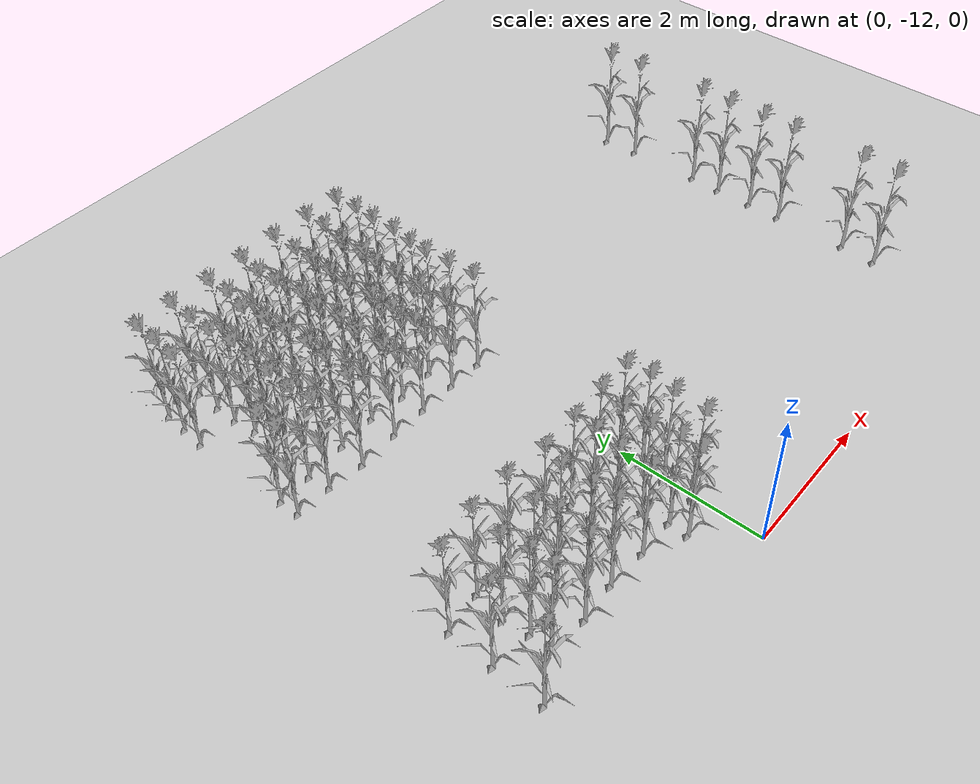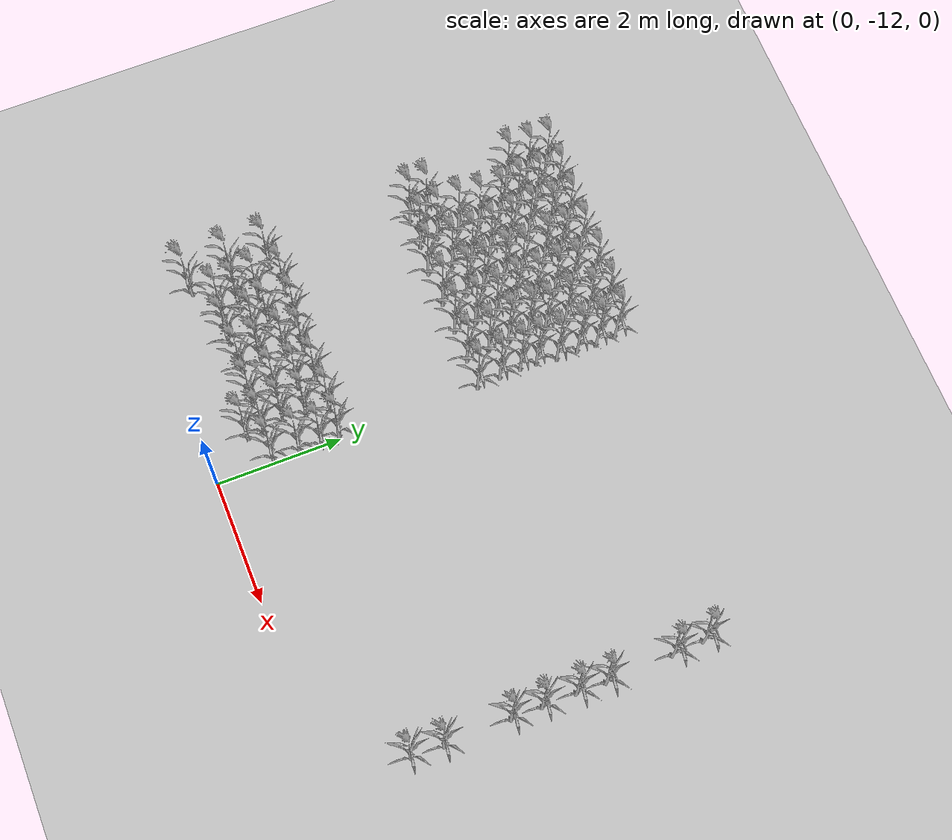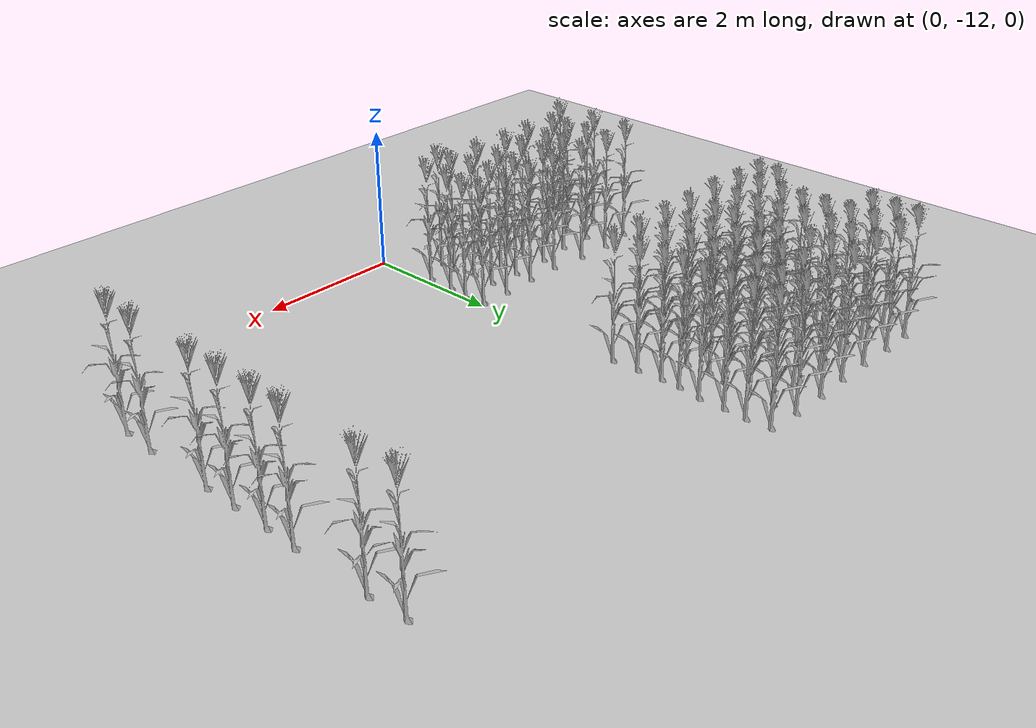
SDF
<sdf version="1.7">
 <world name="farmland_world">
  <model name="ground_plane">
   <static>1</static>
   <link name="link">
    <collision name="collision">
     <geometry><plane><normal>0 0 1</normal><size>40.0 40.0</size></plane></geometry>
     <surface><friction><ode><mu>100</mu><mu2>50</mu2></ode></friction></surface>
    </collision>
    <visual name="visual">
     <cast_shadows>0</cast_shadows>
     <geometry><plane><normal>0 0 1</normal><size>40.0 40.0</size></plane></geometry>
     <material>
      <script><uri>file://media/materials/scripts/gazebo.material</uri><name>Gazebo/Grey</name></script>
     </material>
    </visual>
   </link>
  </model>
  <model name="tree_3_907">
   <static>1</static>
   <link name="link">
    <collision name="collision">
     <geometry><mesh><uri>model://Corn_low_poly/corn.obj</uri><scale>1 1 1</scale></mesh></geometry>
     <surface><friction><ode><mu>100</mu><mu2>50</mu2></ode></friction></surface>
    </collision>
    <visual name="visual">
     <geometry><mesh><uri>model://Corn_low_poly/corn.obj</uri><scale>1 1 1</scale></mesh></geometry>
    </visual>
   </link>
   <pose>4.960904113792251 -6.073418864360485 0 0 0 0</pose>
  </model>
  <model name="tree_3_908">
   <static>1</static>
   <link name="link">
    <collision name="collision">
     <geometry><mesh><uri>model://Corn_low_poly/corn.obj</uri><scale>1 1 1</scale></mesh></geometry>
     <surface><friction><ode><mu>100</mu><mu2>50</mu2></ode></friction></surface>
    </collision>
    <visual name="visual">
     <geometry><mesh><uri>model://Corn_low_poly/corn.obj</uri><scale>1 1 1</scale></mesh></geometry>
    </visual>
   </link>
   <pose>4.989653443699581 -6.587160479671399 0 0 0 0</pose>
  </model>
  <model name="tree_3_910">
   <static>1</static>
   <link name="link">
    <collision name="collision">
     <geometry><mesh><uri>model://Corn_low_poly/corn.obj</uri><scale>1 1 1</scale></mesh></geometry>
     <surface><friction><ode><mu>100</mu><mu2>50</mu2></ode></friction></surface>
    </collision>
    <visual name="visual">
     <geometry><mesh><uri>model://Corn_low_poly/corn.obj</uri><scale>1 1 1</scale></mesh></geometry>
    </visual>
   </link>
   <pose>5.012452274802734 -7.663398571187663 0 0 0 0</pose>
  </model>
  <model name="tree_3_911">
   <static>1</static>
   <link name="link">
    <collision name="collision">
     <geometry><mesh><uri>model://Corn_low_poly/corn.obj</uri><scale>1 1 1</scale></mesh></geometry>
     <surface><friction><ode><mu>100</mu><mu2>50</mu2></ode></friction></surface>
    </collision>
    <visual name="visual">
     <geometry><mesh><uri>model://Corn_low_poly/corn.obj</uri><scale>1 1 1</scale></mesh></geometry>
    </visual>
   </link>
   <pose>5.003562795902089 -8.127571084656687 0 0 0 0</pose>
  </model>
  <model name="tree_3_912">
   <static>1</static>
   <link name="link">
    <collision name="collision">
     <geometry><mesh><uri>model://Corn_low_poly/corn.obj</uri><scale>1 1 1</scale></mesh></geometry>
     <surface><friction><ode><mu>100</mu><mu2>50</mu2></ode></friction></surface>
    </collision>
    <visual name="visual">
     <geometry><mesh><uri>model://Corn_low_poly/corn.obj</uri><scale>1 1 1</scale></mesh></geometry>
    </visual>
   </link>
   <pose>5.0082375647005914 -8.671102984846886 0 0 0 0</pose>
  </model>
  <model name="tree_3_913">
   <static>1</static>
   <link name="link">
    <collision name="collision">
     <geometry><mesh><uri>model://Corn_low_poly/corn.obj</uri><scale>1 1 1</scale></mesh></geometry>
     <surface><friction><ode><mu>100</mu><mu2>50</mu2></ode></friction></surface>
    </collision>
    <visual name="visual">
     <geometry><mesh><uri>model://Corn_low_poly/corn.obj</uri><scale>1 1 1</scale></mesh></geometry>
    </visual>
   </link>
   <pose>5.009978428316922 -9.162619255041209 0 0 0 0</pose>
  </model>
  <model name="tree_3_915">
   <static>1</static>
   <link name="link">
    <collision name="collision">
     <geometry><mesh><uri>model://Corn_low_poly/corn.obj</uri><scale>1 1 1</scale></mesh></geometry>
     <surface><friction><ode><mu>100</mu><mu2>50</mu2></ode></friction></surface>
    </collision>
    <visual name="visual">
     <geometry><mesh><uri>model://Corn_low_poly/corn.obj</uri><scale>1 1 1</scale></mesh></geometry>
    </visual>
   </link>
   <pose>5.022867575815033 -10.214676860148334 0 0 0 0</pose>
  </model>
  <model name="tree_3_916">
   <static>1</static>
   <link name="link">
    <collision name="collision">
     <geometry><mesh><uri>model://Corn_low_poly/corn.obj</uri><scale>1 1 1</scale></mesh></geometry>
     <surface><friction><ode><mu>100</mu><mu2>50</mu2></ode></friction></surface>
    </collision>
    <visual name="visual">
     <geometry><mesh><uri>model://Corn_low_poly/corn.obj</uri><scale>1 1 1</scale></mesh></geometry>
    </visual>
   </link>
   <pose>4.996989608821176 -10.727343626677879 0 0 0 0</pose>
  </model>
  <model name="tree_3_2013">
   <static>1</static>
   <link name="link">
    <collision name="collision">
     <geometry><mesh><uri>model://Corn_low_poly/corn.obj</uri><scale>1 1 1</scale></mesh></geometry>
     <surface><friction><ode><mu>100</mu><mu2>50</mu2></ode></friction></surface>
    </collision>
    <visual name="visual">
     <geometry><mesh><uri>model://Corn_low_poly/corn.obj</uri><scale>1 1 1</scale></mesh></geometry>
    </visual>
   </link>
   <pose>-0.04642548947800543 -11.048270782236017 0 0 0 0</pose>
  </model>
  <model name="tree_3_2014">
   <static>1</static>
   <link name="link">
    <collision name="collision">
     <geometry><mesh><uri>model://Corn_low_poly/corn.obj</uri><scale>1 1 1</scale></mesh></geometry>
     <surface><friction><ode><mu>100</mu><mu2>50</mu2></ode></friction></surface>
    </collision>
    <visual name="visual">
     <geometry><mesh><uri>model://Corn_low_poly/corn.obj</uri><scale>1 1 1</scale></mesh></geometry>
    </visual>
   </link>
   <pose>-0.492072833979026 -11.031853719489208 0 0 0 0</pose>
  </model>
  <model name="tree_3_2015">
   <static>1</static>
   <link name="link">
    <collision name="collision">
     <geometry><mesh><uri>model://Corn_low_poly/corn.obj</uri><scale>1 1 1</scale></mesh></geometry>
     <surface><friction><ode><mu>100</mu><mu2>50</mu2></ode></friction></surface>
    </collision>
    <visual name="visual">
     <geometry><mesh><uri>model://Corn_low_poly/corn.obj</uri><scale>1 1 1</scale></mesh></geometry>
    </visual>
   </link>
   <pose>-1.016081686885649 -11.036350345827861 0 0 0 0</pose>
  </model>
  <model name="tree_3_2016">
   <static>1</static>
   <link name="link">
    <collision name="collision">
     <geometry><mesh><uri>model://Corn_low_poly/corn.obj</uri><scale>1 1 1</scale></mesh></geometry>
     <surface><friction><ode><mu>100</mu><mu2>50</mu2></ode></friction></surface>
    </collision>
    <visual name="visual">
     <geometry><mesh><uri>model://Corn_low_poly/corn.obj</uri><scale>1 1 1</scale></mesh></geometry>
    </visual>
   </link>
   <pose>-1.5691146932293378 -11.009192581070746 0 0 0 0</pose>
  </model>
  <model name="tree_3_2017">
   <static>1</static>
   <link name="link">
    <collision name="collision">
     <geometry><mesh><uri>model://Corn_low_poly/corn.obj</uri><scale>1 1 1</scale></mesh></geometry>
     <surface><friction><ode><mu>100</mu><mu2>50</mu2></ode></friction></surface>
    </collision>
    <visual name="visual">
     <geometry><mesh><uri>model://Corn_low_poly/corn.obj</uri><scale>1 1 1</scale></mesh></geometry>
    </visual>
   </link>
   <pose>-2.0837248313382823 -11.049086042693116 0 0 0 0</pose>
  </model>
  <model name="tree_3_2018">
   <static>1</static>
   <link name="link">
    <collision name="collision">
     <geometry><mesh><uri>model://Corn_low_poly/corn.obj</uri><scale>1 1 1</scale></mesh></geometry>
     <surface><friction><ode><mu>100</mu><mu2>50</mu2></ode></friction></surface>
    </collision>
    <visual name="visual">
     <geometry><mesh><uri>model://Corn_low_poly/corn.obj</uri><scale>1 1 1</scale></mesh></geometry>
    </visual>
   </link>
   <pose>-2.5737917995754698 -10.987284565926311 0 0 0 0</pose>
  </model>
  <model name="tree_3_2048">
   <static>1</static>
   <link name="link">
    <collision name="collision">
     <geometry><mesh><uri>model://Corn_low_poly/corn.obj</uri><scale>1 1 1</scale></mesh></geometry>
     <surface><friction><ode><mu>100</mu><mu2>50</mu2></ode></friction></surface>
    </collision>
    <visual name="visual">
     <geometry><mesh><uri>model://Corn_low_poly/corn.obj</uri><scale>1 1 1</scale></mesh></geometry>
    </visual>
   </link>
   <pose>-0.4959463640014836 -11.294237832303077 0 0 0 0</pose>
  </model>
  <model name="tree_3_2053">
   <static>1</static>
   <link name="link">
    <collision name="collision">
     <geometry><mesh><uri>model://Corn_low_poly/corn.obj</uri><scale>1 1 1</scale></mesh></geometry>
     <surface><friction><ode><mu>100</mu><mu2>50</mu2></ode></friction></surface>
    </collision>
    <visual name="visual">
     <geometry><mesh><uri>model://Corn_low_poly/corn.obj</uri><scale>1 1 1</scale></mesh></geometry>
    </visual>
   </link>
   <pose>-3.106234592842121 -11.323358223443078 0 0 0 0</pose>
  </model>
  <model name="tree_3_2115">
   <static>1</static>
   <link name="link">
    <collision name="collision">
     <geometry><mesh><uri>model://Corn_low_poly/corn.obj</uri><scale>1 1 1</scale></mesh></geometry>
     <surface><friction><ode><mu>100</mu><mu2>50</mu2></ode></friction></surface>
    </collision>
    <visual name="visual">
     <geometry><mesh><uri>model://Corn_low_poly/corn.obj</uri><scale>1 1 1</scale></mesh></geometry>
    </visual>
   </link>
   <pose>-0.02213013065476145 -9.985273160149006 0 0 0 0</pose>
  </model>
  <model name="tree_3_2116">
   <static>1</static>
   <link name="link">
    <collision name="collision">
     <geometry><mesh><uri>model://Corn_low_poly/corn.obj</uri><scale>1 1 1</scale></mesh></geometry>
     <surface><friction><ode><mu>100</mu><mu2>50</mu2></ode></friction></surface>
    </collision>
    <visual name="visual">
     <geometry><mesh><uri>model://Corn_low_poly/corn.obj</uri><scale>1 1 1</scale></mesh></geometry>
    </visual>
   </link>
   <pose>-0.46561172927156197 -9.977976396988401 0 0 0 0</pose>
  </model>
  <model name="tree_3_2117">
   <static>1</static>
   <link name="link">
    <collision name="collision">
     <geometry><mesh><uri>model://Corn_low_poly/corn.obj</uri><scale>1 1 1</scale></mesh></geometry>
     <surface><friction><ode><mu>100</mu><mu2>50</mu2></ode></friction></surface>
    </collision>
    <visual name="visual">
     <geometry><mesh><uri>model://Corn_low_poly/corn.obj</uri><scale>1 1 1</scale></mesh></geometry>
    </visual>
   </link>
   <pose>-0.9843082422897207 -10.005547580233921 0 0 0 0</pose>
  </model>
  <model name="tree_3_2118">
   <static>1</static>
   <link name="link">
    <collision name="collision">
     <geometry><mesh><uri>model://Corn_low_poly/corn.obj</uri><scale>1 1 1</scale></mesh></geometry>
     <surface><friction><ode><mu>100</mu><mu2>50</mu2></ode></friction></surface>
    </collision>
    <visual name="visual">
     <geometry><mesh><uri>model://Corn_low_poly/corn.obj</uri><scale>1 1 1</scale></mesh></geometry>
    </visual>
   </link>
   <pose>-1.5002613882177902 -10.023325452817653 0 0 0 0</pose>
  </model>
  <model name="tree_3_2119">
   <static>1</static>
   <link name="link">
    <collision name="collision">
     <geometry><mesh><uri>model://Corn_low_poly/corn.obj</uri><scale>1 1 1</scale></mesh></geometry>
     <surface><friction><ode><mu>100</mu><mu2>50</mu2></ode></friction></surface>
    </collision>
    <visual name="visual">
     <geometry><mesh><uri>model://Corn_low_poly/corn.obj</uri><scale>1 1 1</scale></mesh></geometry>
    </visual>
   </link>
   <pose>-2.0321054897871758 -9.954904939214469 0 0 0 0</pose>
  </model>
  <model name="tree_3_2120">
   <static>1</static>
   <link name="link">
    <collision name="collision">
     <geometry><mesh><uri>model://Corn_low_poly/corn.obj</uri><scale>1 1 1</scale></mesh></geometry>
     <surface><friction><ode><mu>100</mu><mu2>50</mu2></ode></friction></surface>
    </collision>
    <visual name="visual">
     <geometry><mesh><uri>model://Corn_low_poly/corn.obj</uri><scale>1 1 1</scale></mesh></geometry>
    </visual>
   </link>
   <pose>-2.563560202405726 -9.95061014771989 0 0 0 0</pose>
  </model>
  <model name="tree_3_2121">
   <static>1</static>
   <link name="link">
    <collision name="collision">
     <geometry><mesh><uri>model://Corn_low_poly/corn.obj</uri><scale>1 1 1</scale></mesh></geometry>
     <surface><friction><ode><mu>100</mu><mu2>50</mu2></ode></friction></surface>
    </collision>
    <visual name="visual">
     <geometry><mesh><uri>model://Corn_low_poly/corn.obj</uri><scale>1 1 1</scale></mesh></geometry>
    </visual>
   </link>
   <pose>-3.0910837123541977 -10.027543637391805 0 0 0 0</pose>
  </model>
  <model name="tree_3_2149">
   <static>1</static>
   <link name="link">
    <collision name="collision">
     <geometry><mesh><uri>model://Corn_low_poly/corn.obj</uri><scale>1 1 1</scale></mesh></geometry>
     <surface><friction><ode><mu>100</mu><mu2>50</mu2></ode></friction></surface>
    </collision>
    <visual name="visual">
     <geometry><mesh><uri>model://Corn_low_poly/corn.obj</uri><scale>1 1 1</scale></mesh></geometry>
    </visual>
   </link>
   <pose>0.028607755979425654 -10.283043746969993 0 0 0 0</pose>
  </model>
  <model name="tree_3_2150">
   <static>1</static>
   <link name="link">
    <collision name="collision">
     <geometry><mesh><uri>model://Corn_low_poly/corn.obj</uri><scale>1 1 1</scale></mesh></geometry>
     <surface><friction><ode><mu>100</mu><mu2>50</mu2></ode></friction></surface>
    </collision>
    <visual name="visual">
     <geometry><mesh><uri>model://Corn_low_poly/corn.obj</uri><scale>1 1 1</scale></mesh></geometry>
    </visual>
   </link>
   <pose>-0.5400134436055499 -10.334297486931542 0 0 0 0</pose>
  </model>
  <model name="tree_3_2151">
   <static>1</static>
   <link name="link">
    <collision name="collision">
     <geometry><mesh><uri>model://Corn_low_poly/corn.obj</uri><scale>1 1 1</scale></mesh></geometry>
     <surface><friction><ode><mu>100</mu><mu2>50</mu2></ode></friction></surface>
    </collision>
    <visual name="visual">
     <geometry><mesh><uri>model://Corn_low_poly/corn.obj</uri><scale>1 1 1</scale></mesh></geometry>
    </visual>
   </link>
   <pose>-0.9919652682633593 -10.297486940785271 0 0 0 0</pose>
  </model>
  <model name="tree_3_2152">
   <static>1</static>
   <link name="link">
    <collision name="collision">
     <geometry><mesh><uri>model://Corn_low_poly/corn.obj</uri><scale>1 1 1</scale></mesh></geometry>
     <surface><friction><ode><mu>100</mu><mu2>50</mu2></ode></friction></surface>
    </collision>
    <visual name="visual">
     <geometry><mesh><uri>model://Corn_low_poly/corn.obj</uri><scale>1 1 1</scale></mesh></geometry>
    </visual>
   </link>
   <pose>-1.5795753726536719 -10.299248081117073 0 0 0 0</pose>
  </model>
  <model name="tree_3_2153">
   <static>1</static>
   <link name="link">
    <collision name="collision">
     <geometry><mesh><uri>model://Corn_low_poly/corn.obj</uri><scale>1 1 1</scale></mesh></geometry>
     <surface><friction><ode><mu>100</mu><mu2>50</mu2></ode></friction></surface>
    </collision>
    <visual name="visual">
     <geometry><mesh><uri>model://Corn_low_poly/corn.obj</uri><scale>1 1 1</scale></mesh></geometry>
    </visual>
   </link>
   <pose>-2.1074814202514283 -10.374710971038109 0 0 0 0</pose>
  </model>
  <model name="tree_3_2154">
   <static>1</static>
   <link name="link">
    <collision name="collision">
     <geometry><mesh><uri>model://Corn_low_poly/corn.obj</uri><scale>1 1 1</scale></mesh></geometry>
     <surface><friction><ode><mu>100</mu><mu2>50</mu2></ode></friction></surface>
    </collision>
    <visual name="visual">
     <geometry><mesh><uri>model://Corn_low_poly/corn.obj</uri><scale>1 1 1</scale></mesh></geometry>
    </visual>
   </link>
   <pose>-2.6247111082918075 -10.369392395163235 0 0 0 0</pose>
  </model>
  <model name="tree_3_2183">
   <static>1</static>
   <link name="link">
    <collision name="collision">
     <geometry><mesh><uri>model://Corn_low_poly/corn.obj</uri><scale>1 1 1</scale></mesh></geometry>
     <surface><friction><ode><mu>100</mu><mu2>50</mu2></ode></friction></surface>
    </collision>
    <visual name="visual">
     <geometry><mesh><uri>model://Corn_low_poly/corn.obj</uri><scale>1 1 1</scale></mesh></geometry>
    </visual>
   </link>
   <pose>-0.02584936781220494 -10.626668128865997 0 0 0 0</pose>
  </model>
  <model name="tree_3_2184">
   <static>1</static>
   <link name="link">
    <collision name="collision">
     <geometry><mesh><uri>model://Corn_low_poly/corn.obj</uri><scale>1 1 1</scale></mesh></geometry>
     <surface><friction><ode><mu>100</mu><mu2>50</mu2></ode></friction></surface>
    </collision>
    <visual name="visual">
     <geometry><mesh><uri>model://Corn_low_poly/corn.obj</uri><scale>1 1 1</scale></mesh></geometry>
    </visual>
   </link>
   <pose>-0.5579998149183683 -10.700849301045078 0 0 0 0</pose>
  </model>
  <model name="tree_3_2185">
   <static>1</static>
   <link name="link">
    <collision name="collision">
     <geometry><mesh><uri>model://Corn_low_poly/corn.obj</uri><scale>1 1 1</scale></mesh></geometry>
     <surface><friction><ode><mu>100</mu><mu2>50</mu2></ode></friction></surface>
    </collision>
    <visual name="visual">
     <geometry><mesh><uri>model://Corn_low_poly/corn.obj</uri><scale>1 1 1</scale></mesh></geometry>
    </visual>
   </link>
   <pose>-1.034063844153392 -10.639533207839534 0 0 0 0</pose>
  </model>
  <model name="tree_3_2186">
   <static>1</static>
   <link name="link">
    <collision name="collision">
     <geometry><mesh><uri>model://Corn_low_poly/corn.obj</uri><scale>1 1 1</scale></mesh></geometry>
     <surface><friction><ode><mu>100</mu><mu2>50</mu2></ode></friction></surface>
    </collision>
    <visual name="visual">
     <geometry><mesh><uri>model://Corn_low_poly/corn.obj</uri><scale>1 1 1</scale></mesh></geometry>
    </visual>
   </link>
   <pose>-1.5764268529042722 -10.693873108025064 0 0 0 0</pose>
  </model>
  <model name="tree_3_2187">
   <static>1</static>
   <link name="link">
    <collision name="collision">
     <geometry><mesh><uri>model://Corn_low_poly/corn.obj</uri><scale>1 1 1</scale></mesh></geometry>
     <surface><friction><ode><mu>100</mu><mu2>50</mu2></ode></friction></surface>
    </collision>
    <visual name="visual">
     <geometry><mesh><uri>model://Corn_low_poly/corn.obj</uri><scale>1 1 1</scale></mesh></geometry>
    </visual>
   </link>
   <pose>-2.0350485640799967 -10.620006559471838 0 0 0 0</pose>
  </model>
  <model name="tree_3_2188">
   <static>1</static>
   <link name="link">
    <collision name="collision">
     <geometry><mesh><uri>model://Corn_low_poly/corn.obj</uri><scale>1 1 1</scale></mesh></geometry>
     <surface><friction><ode><mu>100</mu><mu2>50</mu2></ode></friction></surface>
    </collision>
    <visual name="visual">
     <geometry><mesh><uri>model://Corn_low_poly/corn.obj</uri><scale>1 1 1</scale></mesh></geometry>
    </visual>
   </link>
   <pose>-2.575145703894628 -10.704033431645128 0 0 0 0</pose>
  </model>
  <model name="tree_3_2189">
   <static>1</static>
   <link name="link">
    <collision name="collision">
     <geometry><mesh><uri>model://Corn_low_poly/corn.obj</uri><scale>1 1 1</scale></mesh></geometry>
     <surface><friction><ode><mu>100</mu><mu2>50</mu2></ode></friction></surface>
    </collision>
    <visual name="visual">
     <geometry><mesh><uri>model://Corn_low_poly/corn.obj</uri><scale>1 1 1</scale></mesh></geometry>
    </visual>
   </link>
   <pose>-3.105563782836315 -10.642253614043241 0 0 0 0</pose>
  </model>
  <model name="tree_3_2217">
   <static>1</static>
   <link name="link">
    <collision name="collision">
     <geometry><mesh><uri>model://Corn_low_poly/corn.obj</uri><scale>1 1 1</scale></mesh></geometry>
     <surface><friction><ode><mu>100</mu><mu2>50</mu2></ode></friction></surface>
    </collision>
    <visual name="visual">
     <geometry><mesh><uri>model://Corn_low_poly/corn.obj</uri><scale>1 1 1</scale></mesh></geometry>
    </visual>
   </link>
   <pose>-0.041312812604115456 -6.96557911284126 0 0 0 0</pose>
  </model>
  <model name="tree_3_2218">
   <static>1</static>
   <link name="link">
    <collision name="collision">
     <geometry><mesh><uri>model://Corn_low_poly/corn.obj</uri><scale>1 1 1</scale></mesh></geometry>
     <surface><friction><ode><mu>100</mu><mu2>50</mu2></ode></friction></surface>
    </collision>
    <visual name="visual">
     <geometry><mesh><uri>model://Corn_low_poly/corn.obj</uri><scale>1 1 1</scale></mesh></geometry>
    </visual>
   </link>
   <pose>-0.5537437878373408 -6.961146016565416 0 0 0 0</pose>
  </model>
  <model name="tree_3_2219">
   <static>1</static>
   <link name="link">
    <collision name="collision">
     <geometry><mesh><uri>model://Corn_low_poly/corn.obj</uri><scale>1 1 1</scale></mesh></geometry>
     <surface><friction><ode><mu>100</mu><mu2>50</mu2></ode></friction></surface>
    </collision>
    <visual name="visual">
     <geometry><mesh><uri>model://Corn_low_poly/corn.obj</uri><scale>1 1 1</scale></mesh></geometry>
    </visual>
   </link>
   <pose>-0.9998146805334125 -6.995253846596939 0 0 0 0</pose>
  </model>
  <model name="tree_3_2220">
   <static>1</static>
   <link name="link">
    <collision name="collision">
     <geometry><mesh><uri>model://Corn_low_poly/corn.obj</uri><scale>1 1 1</scale></mesh></geometry>
     <surface><friction><ode><mu>100</mu><mu2>50</mu2></ode></friction></surface>
    </collision>
    <visual name="visual">
     <geometry><mesh><uri>model://Corn_low_poly/corn.obj</uri><scale>1 1 1</scale></mesh></geometry>
    </visual>
   </link>
   <pose>-1.5051397639376813 -7.005071352751799 0 0 0 0</pose>
  </model>
  <model name="tree_3_2221">
   <static>1</static>
   <link name="link">
    <collision name="collision">
     <geometry><mesh><uri>model://Corn_low_poly/corn.obj</uri><scale>1 1 1</scale></mesh></geometry>
     <surface><friction><ode><mu>100</mu><mu2>50</mu2></ode></friction></surface>
    </collision>
    <visual name="visual">
     <geometry><mesh><uri>model://Corn_low_poly/corn.obj</uri><scale>1 1 1</scale></mesh></geometry>
    </visual>
   </link>
   <pose>-2.0149944060234946 -7.002536056126972 0 0 0 0</pose>
  </model>
  <model name="tree_3_2222">
   <static>1</static>
   <link name="link">
    <collision name="collision">
     <geometry><mesh><uri>model://Corn_low_poly/corn.obj</uri><scale>1 1 1</scale></mesh></geometry>
     <surface><friction><ode><mu>100</mu><mu2>50</mu2></ode></friction></surface>
    </collision>
    <visual name="visual">
     <geometry><mesh><uri>model://Corn_low_poly/corn.obj</uri><scale>1 1 1</scale></mesh></geometry>
    </visual>
   </link>
   <pose>-2.59179874920372 -6.999561033527121 0 0 0 0</pose>
  </model>
  <model name="tree_3_2251">
   <static>1</static>
   <link name="link">
    <collision name="collision">
     <geometry><mesh><uri>model://Corn_low_poly/corn.obj</uri><scale>1 1 1</scale></mesh></geometry>
     <surface><friction><ode><mu>100</mu><mu2>50</mu2></ode></friction></surface>
    </collision>
    <visual name="visual">
     <geometry><mesh><uri>model://Corn_low_poly/corn.obj</uri><scale>1 1 1</scale></mesh></geometry>
    </visual>
   </link>
   <pose>-0.017557754621787613 -7.3184778557962 0 0 0 0</pose>
  </model>
  <model name="tree_3_2252">
   <static>1</static>
   <link name="link">
    <collision name="collision">
     <geometry><mesh><uri>model://Corn_low_poly/corn.obj</uri><scale>1 1 1</scale></mesh></geometry>
     <surface><friction><ode><mu>100</mu><mu2>50</mu2></ode></friction></surface>
    </collision>
    <visual name="visual">
     <geometry><mesh><uri>model://Corn_low_poly/corn.obj</uri><scale>1 1 1</scale></mesh></geometry>
    </visual>
   </link>
   <pose>-0.5032398136961135 -7.313154887261437 0 0 0 0</pose>
  </model>
  <model name="tree_3_2253">
   <static>1</static>
   <link name="link">
    <collision name="collision">
     <geometry><mesh><uri>model://Corn_low_poly/corn.obj</uri><scale>1 1 1</scale></mesh></geometry>
     <surface><friction><ode><mu>100</mu><mu2>50</mu2></ode></friction></surface>
    </collision>
    <visual name="visual">
     <geometry><mesh><uri>model://Corn_low_poly/corn.obj</uri><scale>1 1 1</scale></mesh></geometry>
    </visual>
   </link>
   <pose>-1.0061058751267986 -7.334967563342234 0 0 0 0</pose>
  </model>
  <model name="tree_3_2254">
   <static>1</static>
   <link name="link">
    <collision name="collision">
     <geometry><mesh><uri>model://Corn_low_poly/corn.obj</uri><scale>1 1 1</scale></mesh></geometry>
     <surface><friction><ode><mu>100</mu><mu2>50</mu2></ode></friction></surface>
    </collision>
    <visual name="visual">
     <geometry><mesh><uri>model://Corn_low_poly/corn.obj</uri><scale>1 1 1</scale></mesh></geometry>
    </visual>
   </link>
   <pose>-1.5092469742161643 -7.289737058345162 0 0 0 0</pose>
  </model>
  <model name="tree_3_2255">
   <static>1</static>
   <link name="link">
    <collision name="collision">
     <geometry><mesh><uri>model://Corn_low_poly/corn.obj</uri><scale>1 1 1</scale></mesh></geometry>
     <surface><friction><ode><mu>100</mu><mu2>50</mu2></ode></friction></surface>
    </collision>
    <visual name="visual">
     <geometry><mesh><uri>model://Corn_low_poly/corn.obj</uri><scale>1 1 1</scale></mesh></geometry>
    </visual>
   </link>
   <pose>-2.0400162198902962 -7.325091643299541 0 0 0 0</pose>
  </model>
  <model name="tree_3_2256">
   <static>1</static>
   <link name="link">
    <collision name="collision">
     <geometry><mesh><uri>model://Corn_low_poly/corn.obj</uri><scale>1 1 1</scale></mesh></geometry>
     <surface><friction><ode><mu>100</mu><mu2>50</mu2></ode></friction></surface>
    </collision>
    <visual name="visual">
     <geometry><mesh><uri>model://Corn_low_poly/corn.obj</uri><scale>1 1 1</scale></mesh></geometry>
    </visual>
   </link>
   <pose>-2.6056760471305744 -7.357366267214907 0 0 0 0</pose>
  </model>
  <model name="tree_3_2257">
   <static>1</static>
   <link name="link">
    <collision name="collision">
     <geometry><mesh><uri>model://Corn_low_poly/corn.obj</uri><scale>1 1 1</scale></mesh></geometry>
     <surface><friction><ode><mu>100</mu><mu2>50</mu2></ode></friction></surface>
    </collision>
    <visual name="visual">
     <geometry><mesh><uri>model://Corn_low_poly/corn.obj</uri><scale>1 1 1</scale></mesh></geometry>
    </visual>
   </link>
   <pose>-3.0541408734515585 -7.367090152414822 0 0 0 0</pose>
  </model>
  <model name="tree_3_2285">
   <static>1</static>
   <link name="link">
    <collision name="collision">
     <geometry><mesh><uri>model://Corn_low_poly/corn.obj</uri><scale>1 1 1</scale></mesh></geometry>
     <surface><friction><ode><mu>100</mu><mu2>50</mu2></ode></friction></surface>
    </collision>
    <visual name="visual">
     <geometry><mesh><uri>model://Corn_low_poly/corn.obj</uri><scale>1 1 1</scale></mesh></geometry>
    </visual>
   </link>
   <pose>0.006290333821949878 -7.695850848429042 0 0 0 0</pose>
  </model>
  <model name="tree_3_2286">
   <static>1</static>
   <link name="link">
    <collision name="collision">
     <geometry><mesh><uri>model://Corn_low_poly/corn.obj</uri><scale>1 1 1</scale></mesh></geometry>
     <surface><friction><ode><mu>100</mu><mu2>50</mu2></ode></friction></surface>
    </collision>
    <visual name="visual">
     <geometry><mesh><uri>model://Corn_low_poly/corn.obj</uri><scale>1 1 1</scale></mesh></geometry>
    </visual>
   </link>
   <pose>-0.4769852329360777 -7.686203987910508 0 0 0 0</pose>
  </model>
  <model name="tree_3_2287">
   <static>1</static>
   <link name="link">
    <collision name="collision">
     <geometry><mesh><uri>model://Corn_low_poly/corn.obj</uri><scale>1 1 1</scale></mesh></geometry>
     <surface><friction><ode><mu>100</mu><mu2>50</mu2></ode></friction></surface>
    </collision>
    <visual name="visual">
     <geometry><mesh><uri>model://Corn_low_poly/corn.obj</uri><scale>1 1 1</scale></mesh></geometry>
    </visual>
   </link>
   <pose>-1.0028683211827754 -7.685377840121842 0 0 0 0</pose>
  </model>
  <model name="tree_3_2288">
   <static>1</static>
   <link name="link">
    <collision name="collision">
     <geometry><mesh><uri>model://Corn_low_poly/corn.obj</uri><scale>1 1 1</scale></mesh></geometry>
     <surface><friction><ode><mu>100</mu><mu2>50</mu2></ode></friction></surface>
    </collision>
    <visual name="visual">
     <geometry><mesh><uri>model://Corn_low_poly/corn.obj</uri><scale>1 1 1</scale></mesh></geometry>
    </visual>
   </link>
   <pose>-1.5126735293606908 -7.68858449923938 0 0 0 0</pose>
  </model>
  <model name="tree_3_2289">
   <static>1</static>
   <link name="link">
    <collision name="collision">
     <geometry><mesh><uri>model://Corn_low_poly/corn.obj</uri><scale>1 1 1</scale></mesh></geometry>
     <surface><friction><ode><mu>100</mu><mu2>50</mu2></ode></friction></surface>
    </collision>
    <visual name="visual">
     <geometry><mesh><uri>model://Corn_low_poly/corn.obj</uri><scale>1 1 1</scale></mesh></geometry>
    </visual>
   </link>
   <pose>-2.0833358153659525 -7.715886626498872 0 0 0 0</pose>
  </model>
  <model name="tree_3_2290">
   <static>1</static>
   <link name="link">
    <collision name="collision">
     <geometry><mesh><uri>model://Corn_low_poly/corn.obj</uri><scale>1 1 1</scale></mesh></geometry>
     <surface><friction><ode><mu>100</mu><mu2>50</mu2></ode></friction></surface>
    </collision>
    <visual name="visual">
     <geometry><mesh><uri>model://Corn_low_poly/corn.obj</uri><scale>1 1 1</scale></mesh></geometry>
    </visual>
   </link>
   <pose>-2.568620818344639 -7.6607774912883455 0 0 0 0</pose>
  </model>
  <model name="tree_3_2291">
   <static>1</static>
   <link name="link">
    <collision name="collision">
     <geometry><mesh><uri>model://Corn_low_poly/corn.obj</uri><scale>1 1 1</scale></mesh></geometry>
     <surface><friction><ode><mu>100</mu><mu2>50</mu2></ode></friction></surface>
    </collision>
    <visual name="visual">
     <geometry><mesh><uri>model://Corn_low_poly/corn.obj</uri><scale>1 1 1</scale></mesh></geometry>
    </visual>
   </link>
   <pose>-3.0518321574026057 -7.651831577822282 0 0 0 0</pose>
  </model>
  <model name="tree_3_2319">
   <static>1</static>
   <link name="link">
    <collision name="collision">
     <geometry><mesh><uri>model://Corn_low_poly/corn.obj</uri><scale>1 1 1</scale></mesh></geometry>
     <surface><friction><ode><mu>100</mu><mu2>50</mu2></ode></friction></surface>
    </collision>
    <visual name="visual">
     <geometry><mesh><uri>model://Corn_low_poly/corn.obj</uri><scale>1 1 1</scale></mesh></geometry>
    </visual>
   </link>
   <pose>-0.00400335406446799 -6.016281173518571 0 0 0 0</pose>
  </model>
  <model name="tree_3_2320">
   <static>1</static>
   <link name="link">
    <collision name="collision">
     <geometry><mesh><uri>model://Corn_low_poly/corn.obj</uri><scale>1 1 1</scale></mesh></geometry>
     <surface><friction><ode><mu>100</mu><mu2>50</mu2></ode></friction></surface>
    </collision>
    <visual name="visual">
     <geometry><mesh><uri>model://Corn_low_poly/corn.obj</uri><scale>1 1 1</scale></mesh></geometry>
    </visual>
   </link>
   <pose>-0.5256089623915093 -6.0054518618994015 0 0 0 0</pose>
  </model>
  <model name="tree_3_2321">
   <static>1</static>
   <link name="link">
    <collision name="collision">
     <geometry><mesh><uri>model://Corn_low_poly/corn.obj</uri><scale>1 1 1</scale></mesh></geometry>
     <surface><friction><ode><mu>100</mu><mu2>50</mu2></ode></friction></surface>
    </collision>
    <visual name="visual">
     <geometry><mesh><uri>model://Corn_low_poly/corn.obj</uri><scale>1 1 1</scale></mesh></geometry>
    </visual>
   </link>
   <pose>-1.0198615284515224 -5.992027031478758 0 0 0 0</pose>
  </model>
  <model name="tree_3_2322">
   <static>1</static>
   <link name="link">
    <collision name="collision">
     <geometry><mesh><uri>model://Corn_low_poly/corn.obj</uri><scale>1 1 1</scale></mesh></geometry>
     <surface><friction><ode><mu>100</mu><mu2>50</mu2></ode></friction></surface>
    </collision>
    <visual name="visual">
     <geometry><mesh><uri>model://Corn_low_poly/corn.obj</uri><scale>1 1 1</scale></mesh></geometry>
    </visual>
   </link>
   <pose>-1.564990733893745 -5.952298318148459 0 0 0 0</pose>
  </model>
  <model name="tree_3_2323">
   <static>1</static>
   <link name="link">
    <collision name="collision">
     <geometry><mesh><uri>model://Corn_low_poly/corn.obj</uri><scale>1 1 1</scale></mesh></geometry>
     <surface><friction><ode><mu>100</mu><mu2>50</mu2></ode></friction></surface>
    </collision>
    <visual name="visual">
     <geometry><mesh><uri>model://Corn_low_poly/corn.obj</uri><scale>1 1 1</scale></mesh></geometry>
    </visual>
   </link>
   <pose>-2.103410271200279 -5.9882573811474895 0 0 0 0</pose>
  </model>
  <model name="tree_3_2324">
   <static>1</static>
   <link name="link">
    <collision name="collision">
     <geometry><mesh><uri>model://Corn_low_poly/corn.obj</uri><scale>1 1 1</scale></mesh></geometry>
     <surface><friction><ode><mu>100</mu><mu2>50</mu2></ode></friction></surface>
    </collision>
    <visual name="visual">
     <geometry><mesh><uri>model://Corn_low_poly/corn.obj</uri><scale>1 1 1</scale></mesh></geometry>
    </visual>
   </link>
   <pose>-2.581381017337994 -5.995414619195258 0 0 0 0</pose>
  </model>
  <model name="tree_3_2325">
   <static>1</static>
   <link name="link">
    <collision name="collision">
     <geometry><mesh><uri>model://Corn_low_poly/corn.obj</uri><scale>1 1 1</scale></mesh></geometry>
     <surface><friction><ode><mu>100</mu><mu2>50</mu2></ode></friction></surface>
    </collision>
    <visual name="visual">
     <geometry><mesh><uri>model://Corn_low_poly/corn.obj</uri><scale>1 1 1</scale></mesh></geometry>
    </visual>
   </link>
   <pose>-3.093212368988985 -5.971244478014256 0 0 0 0</pose>
  </model>
  <model name="tree_3_2353">
   <static>1</static>
   <link name="link">
    <collision name="collision">
     <geometry><mesh><uri>model://Corn_low_poly/corn.obj</uri><scale>1 1 1</scale></mesh></geometry>
     <surface><friction><ode><mu>100</mu><mu2>50</mu2></ode></friction></surface>
    </collision>
    <visual name="visual">
     <geometry><mesh><uri>model://Corn_low_poly/corn.obj</uri><scale>1 1 1</scale></mesh></geometry>
    </visual>
   </link>
   <pose>0.009254578577279028 -6.370016221462543 0 0 0 0</pose>
  </model>
  <model name="tree_3_2354">
   <static>1</static>
   <link name="link">
    <collision name="collision">
     <geometry><mesh><uri>model://Corn_low_poly/corn.obj</uri><scale>1 1 1</scale></mesh></geometry>
     <surface><friction><ode><mu>100</mu><mu2>50</mu2></ode></friction></surface>
    </collision>
    <visual name="visual">
     <geometry><mesh><uri>model://Corn_low_poly/corn.obj</uri><scale>1 1 1</scale></mesh></geometry>
    </visual>
   </link>
   <pose>-0.49381276603859864 -6.365714835795982 0 0 0 0</pose>
  </model>
  <model name="tree_3_2355">
   <static>1</static>
   <link name="link">
    <collision name="collision">
     <geometry><mesh><uri>model://Corn_low_poly/corn.obj</uri><scale>1 1 1</scale></mesh></geometry>
     <surface><friction><ode><mu>100</mu><mu2>50</mu2></ode></friction></surface>
    </collision>
    <visual name="visual">
     <geometry><mesh><uri>model://Corn_low_poly/corn.obj</uri><scale>1 1 1</scale></mesh></geometry>
    </visual>
   </link>
   <pose>-1.022464210042387 -6.324308777861228 0 0 0 0</pose>
  </model>
  <model name="tree_3_2356">
   <static>1</static>
   <link name="link">
    <collision name="collision">
     <geometry><mesh><uri>model://Corn_low_poly/corn.obj</uri><scale>1 1 1</scale></mesh></geometry>
     <surface><friction><ode><mu>100</mu><mu2>50</mu2></ode></friction></surface>
    </collision>
    <visual name="visual">
     <geometry><mesh><uri>model://Corn_low_poly/corn.obj</uri><scale>1 1 1</scale></mesh></geometry>
    </visual>
   </link>
   <pose>-1.5034592021619946 -6.359465150257799 0 0 0 0</pose>
  </model>
  <model name="tree_3_2357">
   <static>1</static>
   <link name="link">
    <collision name="collision">
     <geometry><mesh><uri>model://Corn_low_poly/corn.obj</uri><scale>1 1 1</scale></mesh></geometry>
     <surface><friction><ode><mu>100</mu><mu2>50</mu2></ode></friction></surface>
    </collision>
    <visual name="visual">
     <geometry><mesh><uri>model://Corn_low_poly/corn.obj</uri><scale>1 1 1</scale></mesh></geometry>
    </visual>
   </link>
   <pose>-2.06260027354299 -6.336630295092787 0 0 0 0</pose>
  </model>
  <model name="tree_3_2358">
   <static>1</static>
   <link name="link">
    <collision name="collision">
     <geometry><mesh><uri>model://Corn_low_poly/corn.obj</uri><scale>1 1 1</scale></mesh></geometry>
     <surface><friction><ode><mu>100</mu><mu2>50</mu2></ode></friction></surface>
    </collision>
    <visual name="visual">
     <geometry><mesh><uri>model://Corn_low_poly/corn.obj</uri><scale>1 1 1</scale></mesh></geometry>
    </visual>
   </link>
   <pose>-2.538372896129486 -6.321624784403664 0 0 0 0</pose>
  </model>
  <model name="tree_3_2387">
   <static>1</static>
   <link name="link">
    <collision name="collision">
     <geometry><mesh><uri>model://Corn_low_poly/corn.obj</uri><scale>1 1 1</scale></mesh></geometry>
     <surface><friction><ode><mu>100</mu><mu2>50</mu2></ode></friction></surface>
    </collision>
    <visual name="visual">
     <geometry><mesh><uri>model://Corn_low_poly/corn.obj</uri><scale>1 1 1</scale></mesh></geometry>
    </visual>
   </link>
   <pose>-0.03922675243228551 -6.696356303547448 0 0 0 0</pose>
  </model>
  <model name="tree_3_2388">
   <static>1</static>
   <link name="link">
    <collision name="collision">
     <geometry><mesh><uri>model://Corn_low_poly/corn.obj</uri><scale>1 1 1</scale></mesh></geometry>
     <surface><friction><ode><mu>100</mu><mu2>50</mu2></ode></friction></surface>
    </collision>
    <visual name="visual">
     <geometry><mesh><uri>model://Corn_low_poly/corn.obj</uri><scale>1 1 1</scale></mesh></geometry>
    </visual>
   </link>
   <pose>-0.5609988046686993 -6.620929818731742 0 0 0 0</pose>
  </model>
  <model name="tree_3_2389">
   <static>1</static>
   <link name="link">
    <collision name="collision">
     <geometry><mesh><uri>model://Corn_low_poly/corn.obj</uri><scale>1 1 1</scale></mesh></geometry>
     <surface><friction><ode><mu>100</mu><mu2>50</mu2></ode></friction></surface>
    </collision>
    <visual name="visual">
     <geometry><mesh><uri>model://Corn_low_poly/corn.obj</uri><scale>1 1 1</scale></mesh></geometry>
    </visual>
   </link>
   <pose>-1.0611618126782594 -6.657948292756172 0 0 0 0</pose>
  </model>
  <model name="tree_3_2390">
   <static>1</static>
   <link name="link">
    <collision name="collision">
     <geometry><mesh><uri>model://Corn_low_poly/corn.obj</uri><scale>1 1 1</scale></mesh></geometry>
     <surface><friction><ode><mu>100</mu><mu2>50</mu2></ode></friction></surface>
    </collision>
    <visual name="visual">
     <geometry><mesh><uri>model://Corn_low_poly/corn.obj</uri><scale>1 1 1</scale></mesh></geometry>
    </visual>
   </link>
   <pose>-1.5461282588049226 -6.640949976782104 0 0 0 0</pose>
  </model>
  <model name="tree_3_2391">
   <static>1</static>
   <link name="link">
    <collision name="collision">
     <geometry><mesh><uri>model://Corn_low_poly/corn.obj</uri><scale>1 1 1</scale></mesh></geometry>
     <surface><friction><ode><mu>100</mu><mu2>50</mu2></ode></friction></surface>
    </collision>
    <visual name="visual">
     <geometry><mesh><uri>model://Corn_low_poly/corn.obj</uri><scale>1 1 1</scale></mesh></geometry>
    </visual>
   </link>
   <pose>-2.0400708221955863 -6.6766774624899 0 0 0 0</pose>
  </model>
  <model name="tree_3_2392">
   <static>1</static>
   <link name="link">
    <collision name="collision">
     <geometry><mesh><uri>model://Corn_low_poly/corn.obj</uri><scale>1 1 1</scale></mesh></geometry>
     <surface><friction><ode><mu>100</mu><mu2>50</mu2></ode></friction></surface>
    </collision>
    <visual name="visual">
     <geometry><mesh><uri>model://Corn_low_poly/corn.obj</uri><scale>1 1 1</scale></mesh></geometry>
    </visual>
   </link>
   <pose>-2.5424007427371706 -6.667147759836097 0 0 0 0</pose>
  </model>
  <model name="tree_3_2455">
   <static>1</static>
   <link name="link">
    <collision name="collision">
     <geometry><mesh><uri>model://Corn_low_poly/corn.obj</uri><scale>1 1 1</scale></mesh></geometry>
     <surface><friction><ode><mu>100</mu><mu2>50</mu2></ode></friction></surface>
    </collision>
    <visual name="visual">
     <geometry><mesh><uri>model://Corn_low_poly/corn.obj</uri><scale>1 1 1</scale></mesh></geometry>
    </visual>
   </link>
   <pose>-0.013335294298962963 -5.375262615844438 0 0 0 0</pose>
  </model>
  <model name="tree_3_2456">
   <static>1</static>
   <link name="link">
    <collision name="collision">
     <geometry><mesh><uri>model://Corn_low_poly/corn.obj</uri><scale>1 1 1</scale></mesh></geometry>
     <surface><friction><ode><mu>100</mu><mu2>50</mu2></ode></friction></surface>
    </collision>
    <visual name="visual">
     <geometry><mesh><uri>model://Corn_low_poly/corn.obj</uri><scale>1 1 1</scale></mesh></geometry>
    </visual>
   </link>
   <pose>-0.4915070668143163 -5.339904030464263 0 0 0 0</pose>
  </model>
  <model name="tree_3_2457">
   <static>1</static>
   <link name="link">
    <collision name="collision">
     <geometry><mesh><uri>model://Corn_low_poly/corn.obj</uri><scale>1 1 1</scale></mesh></geometry>
     <surface><friction><ode><mu>100</mu><mu2>50</mu2></ode></friction></surface>
    </collision>
    <visual name="visual">
     <geometry><mesh><uri>model://Corn_low_poly/corn.obj</uri><scale>1 1 1</scale></mesh></geometry>
    </visual>
   </link>
   <pose>-1.0162076628075885 -5.327223112176933 0 0 0 0</pose>
  </model>
  <model name="tree_3_2458">
   <static>1</static>
   <link name="link">
    <collision name="collision">
     <geometry><mesh><uri>model://Corn_low_poly/corn.obj</uri><scale>1 1 1</scale></mesh></geometry>
     <surface><friction><ode><mu>100</mu><mu2>50</mu2></ode></friction></surface>
    </collision>
    <visual name="visual">
     <geometry><mesh><uri>model://Corn_low_poly/corn.obj</uri><scale>1 1 1</scale></mesh></geometry>
    </visual>
   </link>
   <pose>-1.532171263767923 -5.342925859120517 0 0 0 0</pose>
  </model>
  <model name="tree_3_2459">
   <static>1</static>
   <link name="link">
    <collision name="collision">
     <geometry><mesh><uri>model://Corn_low_poly/corn.obj</uri><scale>1 1 1</scale></mesh></geometry>
     <surface><friction><ode><mu>100</mu><mu2>50</mu2></ode></friction></surface>
    </collision>
    <visual name="visual">
     <geometry><mesh><uri>model://Corn_low_poly/corn.obj</uri><scale>1 1 1</scale></mesh></geometry>
    </visual>
   </link>
   <pose>-2.0486606865101225 -5.3401455351936535 0 0 0 0</pose>
  </model>
  <model name="tree_3_2460">
   <static>1</static>
   <link name="link">
    <collision name="collision">
     <geometry><mesh><uri>model://Corn_low_poly/corn.obj</uri><scale>1 1 1</scale></mesh></geometry>
     <surface><friction><ode><mu>100</mu><mu2>50</mu2></ode></friction></surface>
    </collision>
    <visual name="visual">
     <geometry><mesh><uri>model://Corn_low_poly/corn.obj</uri><scale>1 1 1</scale></mesh></geometry>
    </visual>
   </link>
   <pose>-2.569365663626056 -5.310946968278073 0 0 0 0</pose>
  </model>
  <model name="tree_3_2461">
   <static>1</static>
   <link name="link">
    <collision name="collision">
     <geometry><mesh><uri>model://Corn_low_poly/corn.obj</uri><scale>1 1 1</scale></mesh></geometry>
     <surface><friction><ode><mu>100</mu><mu2>50</mu2></ode></friction></surface>
    </collision>
    <visual name="visual">
     <geometry><mesh><uri>model://Corn_low_poly/corn.obj</uri><scale>1 1 1</scale></mesh></geometry>
    </visual>
   </link>
   <pose>-3.04938562496399 -5.314180702838436 0 0 0 0</pose>
  </model>
  <model name="tree_3_2489">
   <static>1</static>
   <link name="link">
    <collision name="collision">
     <geometry><mesh><uri>model://Corn_low_poly/corn.obj</uri><scale>1 1 1</scale></mesh></geometry>
     <surface><friction><ode><mu>100</mu><mu2>50</mu2></ode></friction></surface>
    </collision>
    <visual name="visual">
     <geometry><mesh><uri>model://Corn_low_poly/corn.obj</uri><scale>1 1 1</scale></mesh></geometry>
    </visual>
   </link>
   <pose>0.012025570702523325 -5.704823539479196 0 0 0 0</pose>
  </model>
  <model name="tree_3_2490">
   <static>1</static>
   <link name="link">
    <collision name="collision">
     <geometry><mesh><uri>model://Corn_low_poly/corn.obj</uri><scale>1 1 1</scale></mesh></geometry>
     <surface><friction><ode><mu>100</mu><mu2>50</mu2></ode></friction></surface>
    </collision>
    <visual name="visual">
     <geometry><mesh><uri>model://Corn_low_poly/corn.obj</uri><scale>1 1 1</scale></mesh></geometry>
    </visual>
   </link>
   <pose>-0.4781659705457869 -5.649763804914146 0 0 0 0</pose>
  </model>
  <model name="tree_3_2491">
   <static>1</static>
   <link name="link">
    <collision name="collision">
     <geometry><mesh><uri>model://Corn_low_poly/corn.obj</uri><scale>1 1 1</scale></mesh></geometry>
     <surface><friction><ode><mu>100</mu><mu2>50</mu2></ode></friction></surface>
    </collision>
    <visual name="visual">
     <geometry><mesh><uri>model://Corn_low_poly/corn.obj</uri><scale>1 1 1</scale></mesh></geometry>
    </visual>
   </link>
   <pose>-1.0133312855278875 -5.7011733101331075 0 0 0 0</pose>
  </model>
  <model name="tree_3_2492">
   <static>1</static>
   <link name="link">
    <collision name="collision">
     <geometry><mesh><uri>model://Corn_low_poly/corn.obj</uri><scale>1 1 1</scale></mesh></geometry>
     <surface><friction><ode><mu>100</mu><mu2>50</mu2></ode></friction></surface>
    </collision>
    <visual name="visual">
     <geometry><mesh><uri>model://Corn_low_poly/corn.obj</uri><scale>1 1 1</scale></mesh></geometry>
    </visual>
   </link>
   <pose>-1.5732632706852139 -5.6708290086498 0 0 0 0</pose>
  </model>
  <model name="tree_3_2493">
   <static>1</static>
   <link name="link">
    <collision name="collision">
     <geometry><mesh><uri>model://Corn_low_poly/corn.obj</uri><scale>1 1 1</scale></mesh></geometry>
     <surface><friction><ode><mu>100</mu><mu2>50</mu2></ode></friction></surface>
    </collision>
    <visual name="visual">
     <geometry><mesh><uri>model://Corn_low_poly/corn.obj</uri><scale>1 1 1</scale></mesh></geometry>
    </visual>
   </link>
   <pose>-2.0346550667014744 -5.666642961425355 0 0 0 0</pose>
  </model>
  <model name="tree_3_2494">
   <static>1</static>
   <link name="link">
    <collision name="collision">
     <geometry><mesh><uri>model://Corn_low_poly/corn.obj</uri><scale>1 1 1</scale></mesh></geometry>
     <surface><friction><ode><mu>100</mu><mu2>50</mu2></ode></friction></surface>
    </collision>
    <visual name="visual">
     <geometry><mesh><uri>model://Corn_low_poly/corn.obj</uri><scale>1 1 1</scale></mesh></geometry>
    </visual>
   </link>
   <pose>-2.581571714812171 -5.671802087345346 0 0 0 0</pose>
  </model>
  <model name="tree_3_2495">
   <static>1</static>
   <link name="link">
    <collision name="collision">
     <geometry><mesh><uri>model://Corn_low_poly/corn.obj</uri><scale>1 1 1</scale></mesh></geometry>
     <surface><friction><ode><mu>100</mu><mu2>50</mu2></ode></friction></surface>
    </collision>
    <visual name="visual">
     <geometry><mesh><uri>model://Corn_low_poly/corn.obj</uri><scale>1 1 1</scale></mesh></geometry>
    </visual>
   </link>
   <pose>-3.0625763628157614 -5.6295909043011765 0 0 0 0</pose>
  </model>
 </world>
</sdf>
